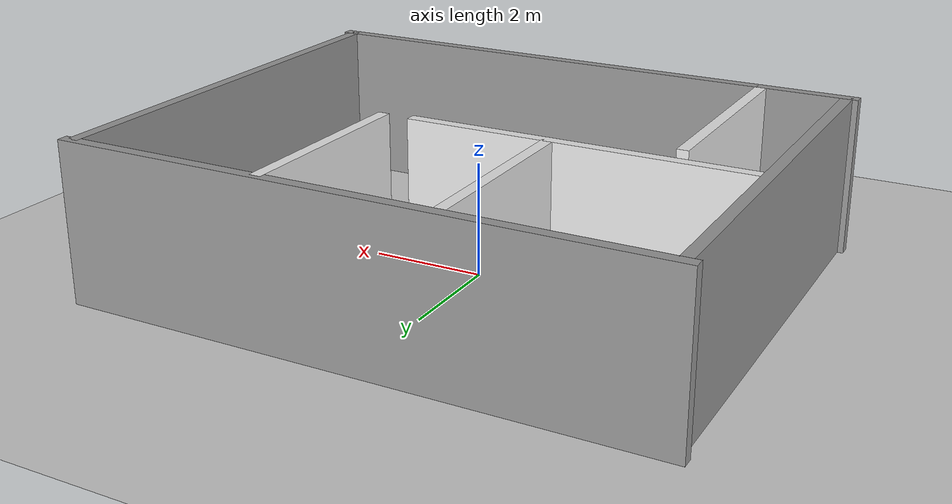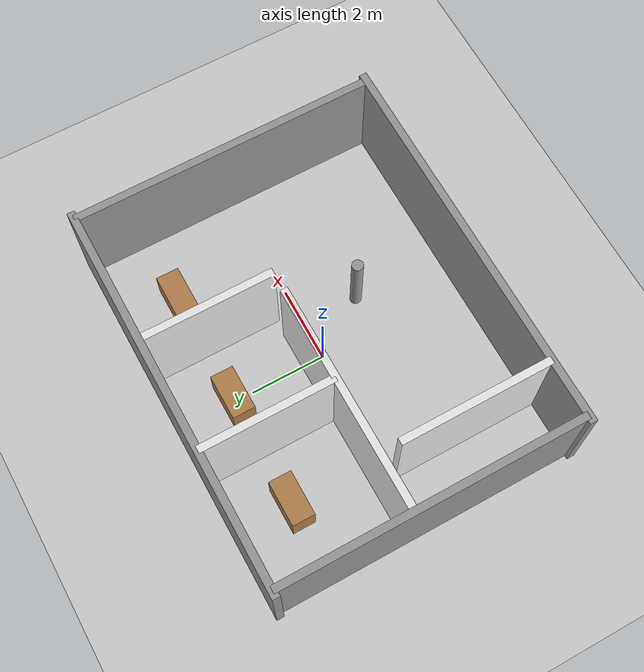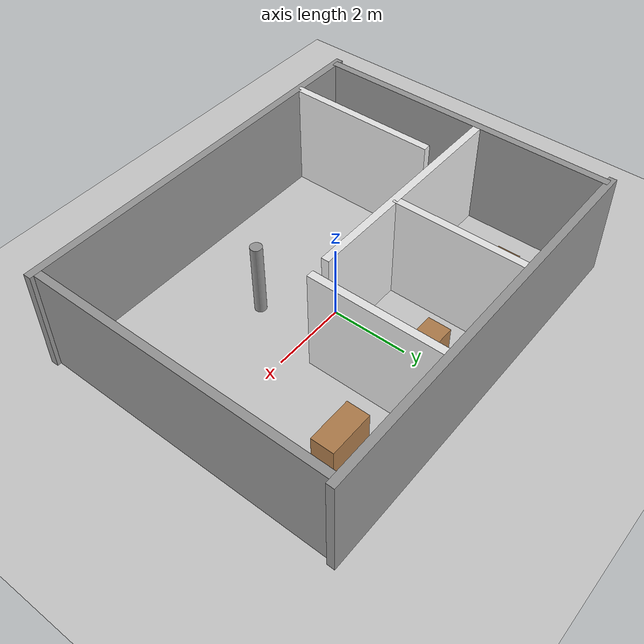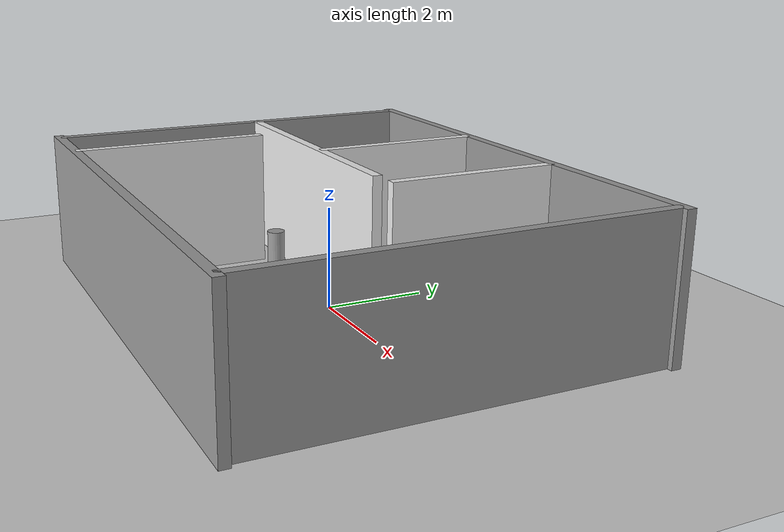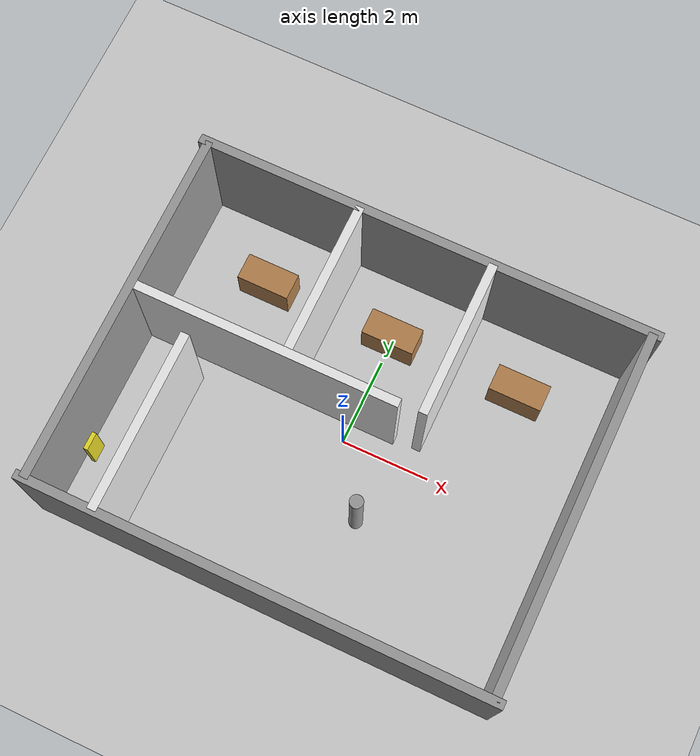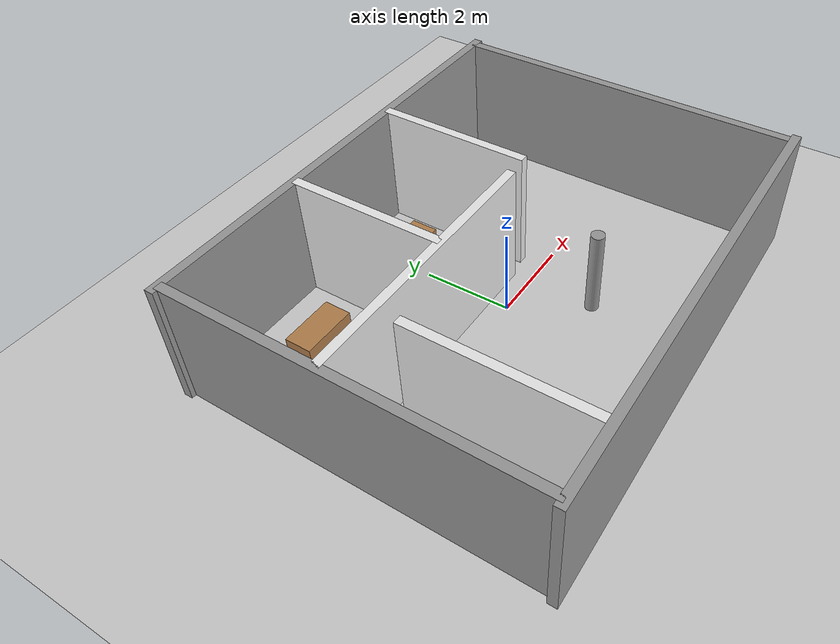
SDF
<?xml version="1.0"?>
<sdf version="1.6">
  <world name="office">

    <!-- =====================================================
         PHYSICS
    ===================================================== -->
    <physics type="ode">
      <max_step_size>0.001</max_step_size>
      <real_time_factor>1</real_time_factor>
      <real_time_update_rate>1000</real_time_update_rate>
    </physics>

    <!-- =====================================================
         LIGHTING  (inlined — avoids Gazebo model-database lookup)
    ===================================================== -->
    <light name="sun" type="directional">
      <cast_shadows>true</cast_shadows>
      <pose>0 0 10 0 0 0</pose>
      <diffuse>0.8 0.8 0.8 1</diffuse>
      <specular>0.2 0.2 0.2 1</specular>
      <direction>-0.5 0.1 -0.9</direction>
    </light>

    <!-- =====================================================
         GROUND PLANE  (inlined — avoids Gazebo model-database lookup)
    ===================================================== -->
    <model name="ground_plane">
      <static>true</static>
      <link name="link">
        <collision name="collision">
          <geometry>
            <plane>
              <normal>0 0 1</normal>
              <size>100 100</size>
            </plane>
          </geometry>
          <surface>
            <friction>
              <ode>
                <mu>100</mu>
                <mu2>50</mu2>
              </ode>
            </friction>
            <contact>
              <ode>
                <kp>1e6</kp>
                <kd>100</kd>
              </ode>
            </contact>
          </surface>
        </collision>
        <visual name="visual">
          <cast_shadows>false</cast_shadows>
          <geometry>
            <plane>
              <normal>0 0 1</normal>
              <size>100 100</size>
            </plane>
          </geometry>
          <material>
            <script>
              <uri>file://media/materials/scripts/gazebo.material</uri>
              <name>Gazebo/Grey</name>
            </script>
          </material>
        </visual>
      </link>
    </model>

    <!-- North wall -->
    <model name="wall_north">
      <static>true</static>
      <pose>0 4 1.4 0 0 0</pose>
      <link name="link">
        <collision name="col">
          <geometry><box><size>10.4 0.2 2.8</size></box></geometry>
        </collision>
        <visual name="vis">
          <geometry><box><size>10.4 0.2 2.8</size></box></geometry>
          <material><script><uri>file://media/materials/scripts/gazebo.material</uri>
            <name>Gazebo/Grey</name></script></material>
        </visual>
      </link>
    </model>

    <!-- South wall -->
    <model name="wall_south">
      <static>true</static>
      <pose>0 -4 1.4 0 0 0</pose>
      <link name="link">
        <collision name="col">
          <geometry><box><size>10.4 0.2 2.8</size></box></geometry>
        </collision>
        <visual name="vis">
          <geometry><box><size>10.4 0.2 2.8</size></box></geometry>
          <material><script><uri>file://media/materials/scripts/gazebo.material</uri>
            <name>Gazebo/Grey</name></script></material>
        </visual>
      </link>
    </model>

    <!-- East wall -->
    <model name="wall_east">
      <static>true</static>
      <pose>5 0 1.4 0 0 0</pose>
      <link name="link">
        <collision name="col">
          <geometry><box><size>0.2 8.0 2.8</size></box></geometry>
        </collision>
        <visual name="vis">
          <geometry><box><size>0.2 8.0 2.8</size></box></geometry>
          <material><script><uri>file://media/materials/scripts/gazebo.material</uri>
            <name>Gazebo/Grey</name></script></material>
        </visual>
      </link>
    </model>

    <!-- West wall -->
    <model name="wall_west">
      <static>true</static>
      <pose>-5 0 1.4 0 0 0</pose>
      <link name="link">
        <collision name="col">
          <geometry><box><size>0.2 8.0 2.8</size></box></geometry>
        </collision>
        <visual name="vis">
          <geometry><box><size>0.2 8.0 2.8</size></box></geometry>
          <material><script><uri>file://media/materials/scripts/gazebo.material</uri>
            <name>Gazebo/Grey</name></script></material>
        </visual>
      </link>
    </model>

    <!-- =====================================================
         INTERIOR WALLS  (create 3 rooms + corridor + home)
    ===================================================== -->

    <!-- Horizontal divider between rooms and corridor (y = 0.5, partial) -->
    <model name="wall_h_divider">
      <static>true</static>
      <!-- from x=-5 to x=1 at y=0.5 -->
      <pose>-2.0 0.5 1.4 0 0 0</pose>
      <link name="link">
        <collision name="col">
          <geometry><box><size>6.0 0.2 2.8</size></box></geometry>
        </collision>
        <visual name="vis">
          <geometry><box><size>6.0 0.2 2.8</size></box></geometry>
          <material><script><uri>file://media/materials/scripts/gazebo.material</uri>
            <name>Gazebo/White</name></script></material>
        </visual>
      </link>
    </model>

    <!-- Vertical divider: Room A | Room B (x = -1.5, upper half) -->
    <model name="wall_v_AB">
      <static>true</static>
      <pose>-1.5 2.25 1.4 0 0 0</pose>
      <link name="link">
        <collision name="col">
          <geometry><box><size>0.2 3.5 2.8</size></box></geometry>
        </collision>
        <visual name="vis">
          <geometry><box><size>0.2 3.5 2.8</size></box></geometry>
          <material><script><uri>file://media/materials/scripts/gazebo.material</uri>
            <name>Gazebo/White</name></script></material>
        </visual>
      </link>
    </model>

    <!-- Vertical divider: Room B | Room C (x = 1.5, upper half) -->
    <model name="wall_v_BC">
      <static>true</static>
      <pose>1.5 2.25 1.4 0 0 0</pose>
      <link name="link">
        <collision name="col">
          <geometry><box><size>0.2 3.5 2.8</size></box></geometry>
        </collision>
        <visual name="vis">
          <geometry><box><size>0.2 3.5 2.8</size></box></geometry>
          <material><script><uri>file://media/materials/scripts/gazebo.material</uri>
            <name>Gazebo/White</name></script></material>
        </visual>
      </link>
    </model>

    <!-- Short wall defining the HOME/DOCK alcove (x = -3.5, lower half) -->
    <model name="wall_home_divider">
      <static>true</static>
      <pose>-3.5 -2.0 1.4 0 0 0</pose>
      <link name="link">
        <collision name="col">
          <geometry><box><size>0.2 4.0 2.8</size></box></geometry>
        </collision>
        <visual name="vis">
          <geometry><box><size>0.2 4.0 2.8</size></box></geometry>
          <material><script><uri>file://media/materials/scripts/gazebo.material</uri>
            <name>Gazebo/White</name></script></material>
        </visual>
      </link>
    </model>

    <!-- =====================================================
         FURNITURE / OBSTACLES (help SLAM build features)
    ===================================================== -->

    <!-- Desk in Room A -->
    <model name="desk_A">
      <static>true</static>
      <pose>-3.0 2.5 0.4 0 0 0</pose>
      <link name="link">
        <collision name="col">
          <geometry><box><size>1.2 0.6 0.8</size></box></geometry>
        </collision>
        <visual name="vis">
          <geometry><box><size>1.2 0.6 0.8</size></box></geometry>
          <material><script><uri>file://media/materials/scripts/gazebo.material</uri>
            <name>Gazebo/Wood</name></script></material>
        </visual>
      </link>
    </model>

    <!-- Desk in Room B -->
    <model name="desk_B">
      <static>true</static>
      <pose>0.0 2.5 0.4 0 0 0</pose>
      <link name="link">
        <collision name="col">
          <geometry><box><size>1.2 0.6 0.8</size></box></geometry>
        </collision>
        <visual name="vis">
          <geometry><box><size>1.2 0.6 0.8</size></box></geometry>
          <material><script><uri>file://media/materials/scripts/gazebo.material</uri>
            <name>Gazebo/Wood</name></script></material>
        </visual>
      </link>
    </model>

    <!-- Desk in Room C -->
    <model name="desk_C">
      <static>true</static>
      <pose>3.0 2.5 0.4 0 0 0</pose>
      <link name="link">
        <collision name="col">
          <geometry><box><size>1.2 0.6 0.8</size></box></geometry>
        </collision>
        <visual name="vis">
          <geometry><box><size>1.2 0.6 0.8</size></box></geometry>
          <material><script><uri>file://media/materials/scripts/gazebo.material</uri>
            <name>Gazebo/Wood</name></script></material>
        </visual>
      </link>
    </model>

    <!-- Pillar in corridor (makes SLAM interesting) -->
    <model name="pillar_corridor">
      <static>true</static>
      <pose>1.0 -1.5 1.0 0 0 0</pose>
      <link name="link">
        <collision name="col">
          <geometry><cylinder><radius>0.15</radius><length>2.0</length></cylinder></geometry>
        </collision>
        <visual name="vis">
          <geometry><cylinder><radius>0.15</radius><length>2.0</length></cylinder></geometry>
          <material><script><uri>file://media/materials/scripts/gazebo.material</uri>
            <name>Gazebo/Grey</name></script></material>
        </visual>
      </link>
    </model>

    <model name="charging_dock">
      <static>true</static>
      <pose>-4.7 -2.5 0.5 0 0 0</pose>
      <link name="link">
        <collision name="col">
          <geometry><box><size>0.1 0.4 1.0</size></box></geometry>
        </collision>
        <visual name="vis">
          <geometry><box><size>0.1 0.4 1.0</size></box></geometry>
          <material><script><uri>file://media/materials/scripts/gazebo.material</uri>
            <name>Gazebo/Yellow</name></script></material>
        </visual>
      </link>
    </model>

  </world>
</sdf>
